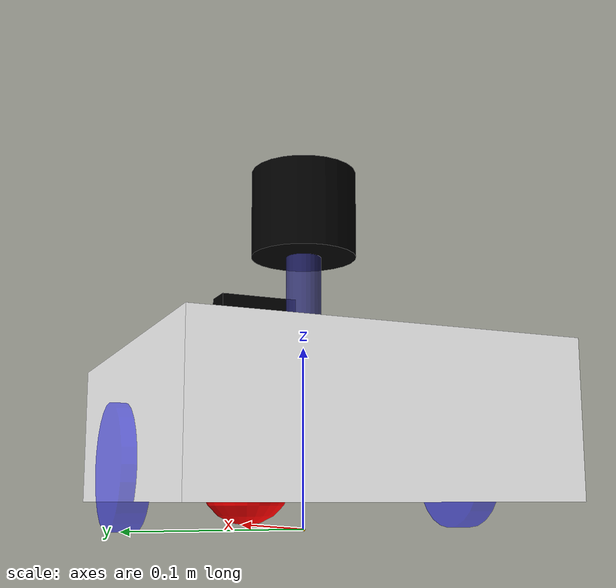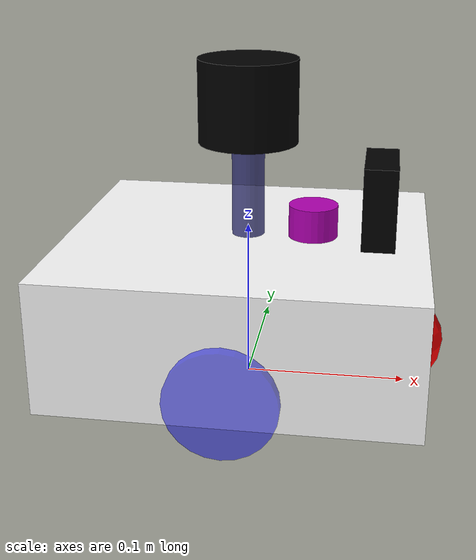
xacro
<robot name="roscar" xmlns:xacro="http://wiki.ros.org/xacro">

    <xacro:include filename="interial.xacro" />

    <xacro:include filename="body.xacro" />
    <xacro:include filename="camera.xacro" />
    <xacro:include filename="lidar.xacro" />

    <xacro:include filename="move.xacro" />
    <xacro:include filename="sensor.xacro" />
    <xacro:include filename="imu.xacro" />

</robot>

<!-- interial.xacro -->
<robot name="base" xmlns:xacro="http://wiki.ros.org/xacro">
    <xacro:macro name="sphere_inertial_matrix" params="m r">
        <inertial>
            <mass value="${m}" />
            <inertia ixx="${2*m*r*r/5}" ixy="0" ixz="0"
                     iyy="${2*m*r*r/5}" iyz="0"
                     izz="${2*m*r*r/5}" />
        </inertial>
    </xacro:macro>

    <xacro:macro name="cylinder_inertial_matrix" params="m r h">
        <inertial>
            <mass value="${m}" />
            <inertia ixx="${m*(3*r*r+h*h)/12}" ixy = "0" ixz = "0"
                     iyy="${m*(3*r*r+h*h)/12}" iyz = "0"
                     izz="${m*r*r/2}" />
        </inertial>
    </xacro:macro>

    <xacro:macro name="Box_inertial_matrix" params="m l w h">
        <inertial>
            <mass value="${m}" />
            <inertia ixx="${m*(h*h + l*l)/12}" ixy = "0" ixz = "0"
                     iyy="${m*(w*w + l*l)/12}" iyz= "0"
                     izz="${m*(w*w + h*h)/12}" />
        </inertial>
    </xacro:macro>
</robot>

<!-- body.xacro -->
<robot name="body" xmlns:xacro="http://wiki.ros.org/xacro">
    <xacro:property name="footprint_radius" value="0.001"/>
    <xacro:property name="base_length" value="0.22"/>
    <xacro:property name="base_width" value="0.2"/>
    <xacro:property name="base_height" value="0.08"/>
    <xacro:property name="lidi" value="0.015"/>
    <xacro:property name="base_joint_z" value="${base_height/2 + lidi}"/>

    <link name="base_footprint">
        <visual>
            <geometry>
                <sphere radius="${footprint_radius}" />
            </geometry>
        </visual>
    </link>

    <link name="base_link">
        <visual>
            <geometry>
                <box size="${base_length} ${base_width} ${base_height}" />
            </geometry>
            <origin xyz="0 0 0" rpy="0 0 0" />
            <material name="white">
                <color rgba="1 1 1 1" />
            </material>
        </visual>

        <collision>
            <geometry>
                <box size ="${base_length} ${base_width} ${base_height}" />
            </geometry>
            <origin xyz="0 0 0" rpy="0 0 0" />
        </collision>
        <xacro:Box_inertial_matrix m="${2}" l="${base_length}" w="${base_width}" h="${base_height}" />
    </link>

    <gazebo reference="base_link">
        <material >
            Gazebo/White
        </material>
    </gazebo>

    <joint name="base_link2base_footprint" type="fixed">
        <parent link="base_footprint" />
        <child link="base_link"/>
        <origin xyz="0 0 ${base_joint_z}" />
    </joint>

    <xacro:property name="wheel_radius" value="0.0325"/>
    <xacro:property name="wheel_length" value="0.015"/>
    <xacro:property name="PI" value="3.1415927"/>
    <xacro:property name="wheel_joint_Z" value="${-base_height/2-lidi+wheel_radius}"/>

    <xacro:macro name="wheel_func" params="wheel_name flag">
        <link name="${wheel_name}_wheel">
            <visual>
                <geometry>
                    <cylinder radius="${wheel_radius}" length="${wheel_length}" />
                </geometry>
                <origin xyz="0 0 0" rpy="${PI/2} 0 0" />
                <material name="wheel_color">
                    <color rgba="0 0 1.0 0.5 0.3" />
                </material>
            </visual>
            <collision>
                <geometry>
                    <cylinder radius="${wheel_radius}" length="${wheel_length}" />
                </geometry>
                <origin xyz="0.0 0.0 0.0" rpy="${PI / 2} 0.0 0.0" />
            </collision>
            <xacro:cylinder_inertial_matrix m="${1}" r="${wheel_radius}" h="${wheel_length}" />
        </link>

        <joint name="base_link2_${wheel_name}" type="continuous">
            <parent link="base_link" />
            <child link="${wheel_name}_wheel"/>
            <origin xyz="0 ${0.1 * flag} ${wheel_joint_Z}" />
            <axis xyz="0 1 0" />
        </joint>

        <gazebo reference="${wheel_name}_wheel">
            <material >
                Gazebo/Black
            </material>
        </gazebo>
    </xacro:macro>

    <xacro:wheel_func wheel_name="left" flag="1" />
    <xacro:wheel_func wheel_name="right" flag="-1" />

    <xacro:property name="small_radius" value="0.03"/>
    <xacro:property name="small_jointz" value="${-base_height/2-lidi+small_radius}"/>

    <xacro:macro name="small_wheel_func" params="small_wheel_name flag">
        <link name="${small_wheel_name}_wheel">
            <visual>
                <geometry>
                    <sphere radius="${small_radius}" />
                </geometry>
                <origin xyz="0 0 0" rpy="0 0 0" />
                <material name="red">
                    <color rgba="1 0.0 0.0 1.0" />
                </material>
            </visual>
            <collision>
                <geometry>
                    <sphere radius="${small_radius}" />
                </geometry>
                <origin xyz="0 0 0" rpy="0 0 0" />
            </collision>
            <xacro:sphere_inertial_matrix m="${0.08}" r="${small_radius}" />
        </link>

        <joint name="${small_wheel_name}2base_link" type="continuous">
            <parent link="base_link" />
            <child link="${small_wheel_name}_wheel" />
            <origin xyz="${0.0925 * flag} 0 ${small_jointz}" />
            <axis xyz="1 1 1" />
        </joint>
        <gazebo reference="${small_wheel_name}_wheel">
            <material >
                Gazebo/Red
            </material>
        </gazebo>
    </xacro:macro>

    <xacro:small_wheel_func small_wheel_name="front" flag="1" />

</robot>

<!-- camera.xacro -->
<robot name="camera" xmlns:xacro="http://wiki.ros.org/xacro">

    <xacro:property name="base_height" value="0.08"/>

    <xacro:property name="cam_x" value="0.02" />
    <xacro:property name="cam_y" value="0.05" />
    <xacro:property name="cam_z" value="0.05" />
    <xacro:property name="cam_off_x" value="0.08" />
    <xacro:property name="cam_off_y" value="0" />
    <xacro:property name="cam_off_z" value="${base_height/2 + cam_z/2 }" />
    <link name="camera">
        <visual>
            <geometry>
                <box size="${cam_x} ${cam_y} ${cam_z}" />
            </geometry>
            <origin xyz="0.0 0.0 0.0" rpy="0.0 0.0 0.0" />
            <material name="camera_color" >
                <color rgba="0 0 0" />
            </material>
        </visual>

        <collision>
            <geometry>
                <box size="${cam_x} ${cam_y} ${cam_z}" />
            </geometry>
            <origin xyz="0.0 0.0 0.0" rpy="0.0 0.0 0.0" />
        </collision>
        <xacro:Box_inertial_matrix m="${0.01}" l="${cam_x}" w="${cam_y}" h="${cam_z}" />
    </link>

    <joint name="camera2base_link" type="fixed">
        <parent link="base_link" />
        <child link="camera" />
        <origin xyz="${cam_off_x} ${cam_off_y} ${cam_off_z}" />
    </joint>
    <gazebo reference="camera">
        <material>Gazebo/Black</material>
    </gazebo>

</robot>

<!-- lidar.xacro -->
<robot name="lidar" xmlns:xacro="http://wiki.ros.org/xacro">
    <xacro:property name="support_radius" value="0.01" />
    <xacro:property name="support_length" value="0.15" />
    <xacro:property name="laser_radius" value="0.03" />
    <xacro:property name="laser_length" value="0.05" />

    <xacro:property name="base_height" value="0.08"/>

    <xacro:property name="support_off_x" value="0" />
    <xacro:property name="support_off_y" value="0" />
    <xacro:property name="support_off_z" value="${ base_height/2 + laser_length/2 }" />
    <xacro:property name="laser_off_x" value="0" />
    <xacro:property name="laser_off_y" value="0" />
    <xacro:property name="laser_off_z" value="${support_off_z/2 + laser_length/2}" />

    <link name="support">
        <visual>
            <geometry>
                <cylinder radius="${support_radius}" length="${support_length}" />
            </geometry>
            <origin xyz="0.0 0.0 0.0" rpy="0.0 0.0 0.0" />
            <material name="laser_support">
                <color rgba="0.2 0.2 0.5 0.8" />
            </material>
        </visual>
        <collision>
            <geometry>
                <cylinder radius="${support_radius}" length="${support_length}" />
            </geometry>
            <origin xyz="0.0 0.0 0.0" rpy="0.0 0.0 0.0" />
        </collision>
        <xacro:cylinder_inertial_matrix m="${0.1}" r="${support_radius}" h="${support_length}" />
    </link>
    <gazebo reference="support">
        <material>Gazebo/Grey</material>
    </gazebo>

    <joint name="support2base_link" type="fixed">
        <parent link="base_link" />
        <child link="support" />
        <origin xyz="${support_off_x} ${support_off_y} ${support_off_z}" />
    </joint>

    <link name="lidar">
        <visual>
            <geometry>
                <cylinder radius="${laser_radius}" length="${laser_length}" />
            </geometry>
            <origin xyz="0.0 0.0 0.0" rpy="0.0 0.0 0.0" />
            <material name="laser_color" >
                <color rgba="0 0 0 1" />
            </material>
        </visual>

        <collision>
            <geometry>
                <cylinder radius="${laser_radius}" length="${laser_length}" />
            </geometry>
            <origin xyz="0.0 0.0 0.0" rpy="0.0 0.0 0.0" />
        </collision>
        <xacro:cylinder_inertial_matrix m="${0.15}" r="${laser_radius}" h="${laser_length}" />

    </link>

    <joint name="laser2support" type="fixed">
        <parent link="support" />
        <child link="lidar" />
        <origin xyz="${laser_off_x} ${laser_off_y} ${laser_off_z}" />
    </joint>
    <gazebo reference="lidar">
        <material>Gazebo/Black</material>
    </gazebo>

</robot>

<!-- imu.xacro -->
<robot name="imu" xmlns:xacro="http://www.ros.org/wiki/xacro">

    <xacro:property name="imu_radius" value="0.015" />
    <xacro:property name="imu_length" value="0.02" />
    <xacro:property name="base_height" value="0.08"/>

    <xacro:property name="imu_off_x" value="0.04" />
    <xacro:property name="imu_off_y" value="0" />
    <xacro:property name="imu_off_z" value="${ base_height/2 + imu_length/2 }" />

    <link name="imu">
        <visual>
            <geometry>
                <cylinder radius="${imu_radius}" length="${imu_length}" />
            </geometry>
            <origin xyz="0.0 0.0 0.0" rpy="0.0 0.0 0.0" />
            <material name="imu_color" >
                <color rgba="0.7 0 0.7 1" />
            </material>
        </visual>

        <collision>
            <geometry>
                <cylinder radius="${imu_radius}" length="${imu_length}" />
            </geometry>
            <origin xyz="0.0 0.0 0.0" rpy="0.0 0.0 0.0" />
        </collision>
        <xacro:cylinder_inertial_matrix m="${0.15}" r="${imu_radius}" h="${imu_length}" />
    </link>

    <joint name="imu2support" type="fixed">
        <parent link="base_link" />
        <child link="imu" />
        <origin xyz="${imu_off_x} ${imu_off_y} ${imu_off_z}" />
    </joint>

    <gazebo reference="imu">
        <material>Gazebo/Purple</material>
    </gazebo>

</robot>
